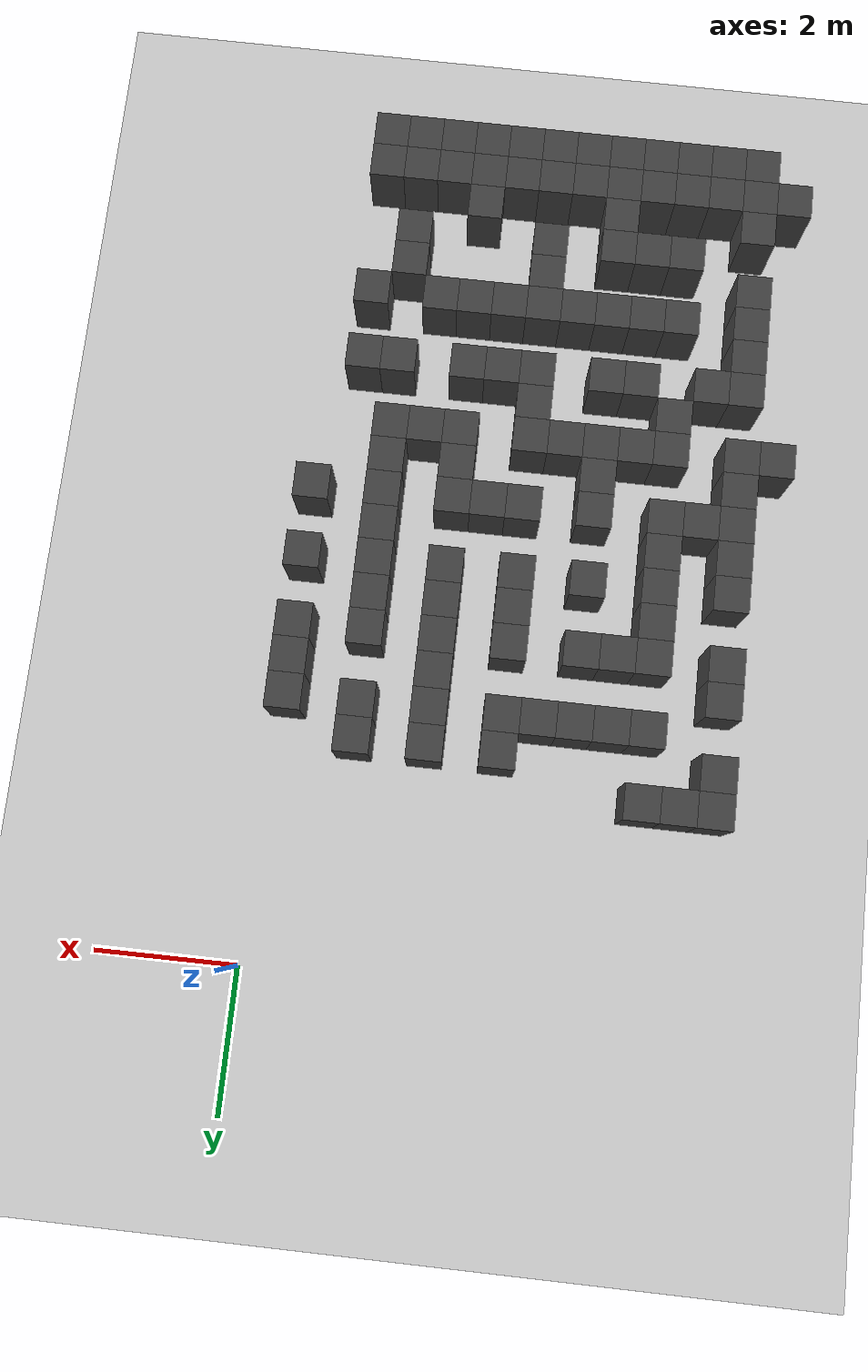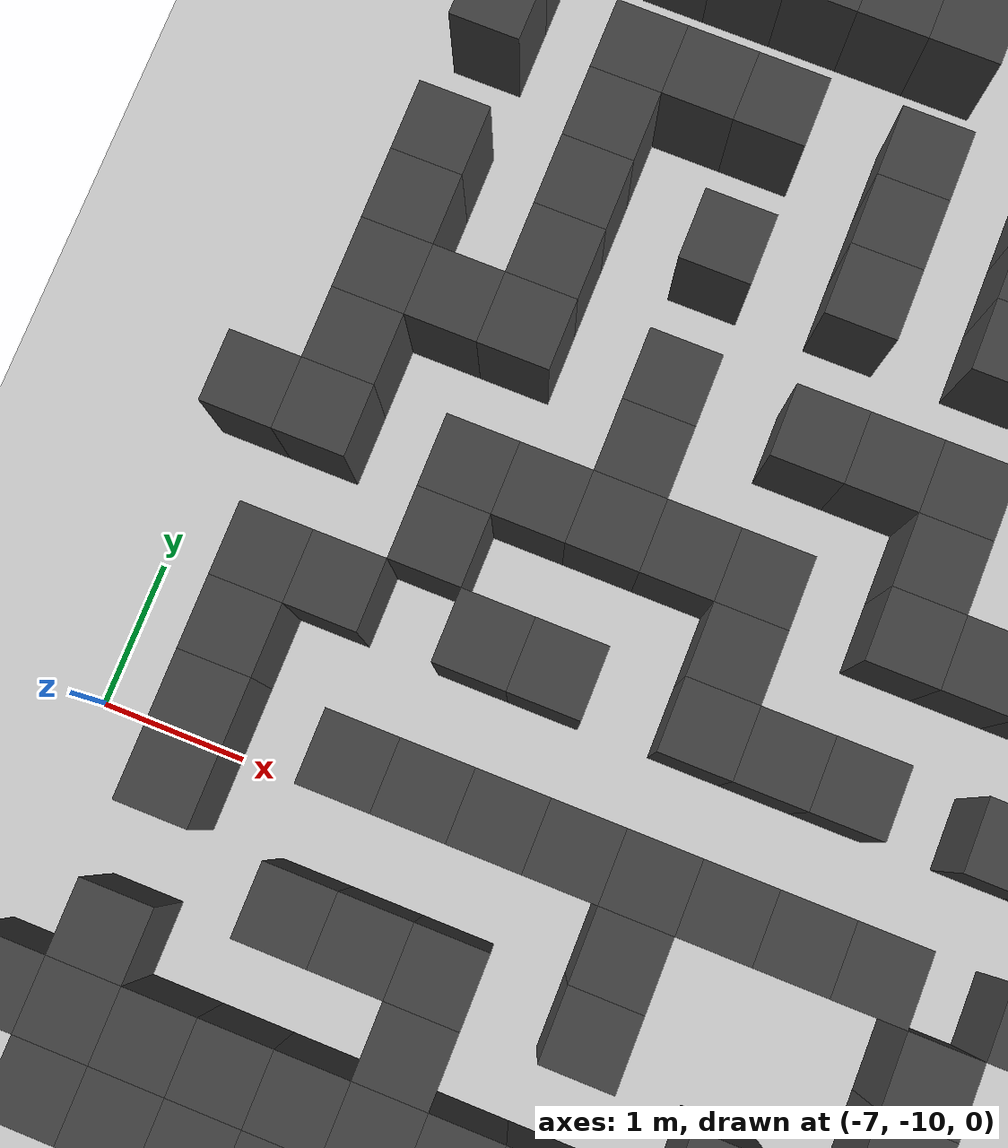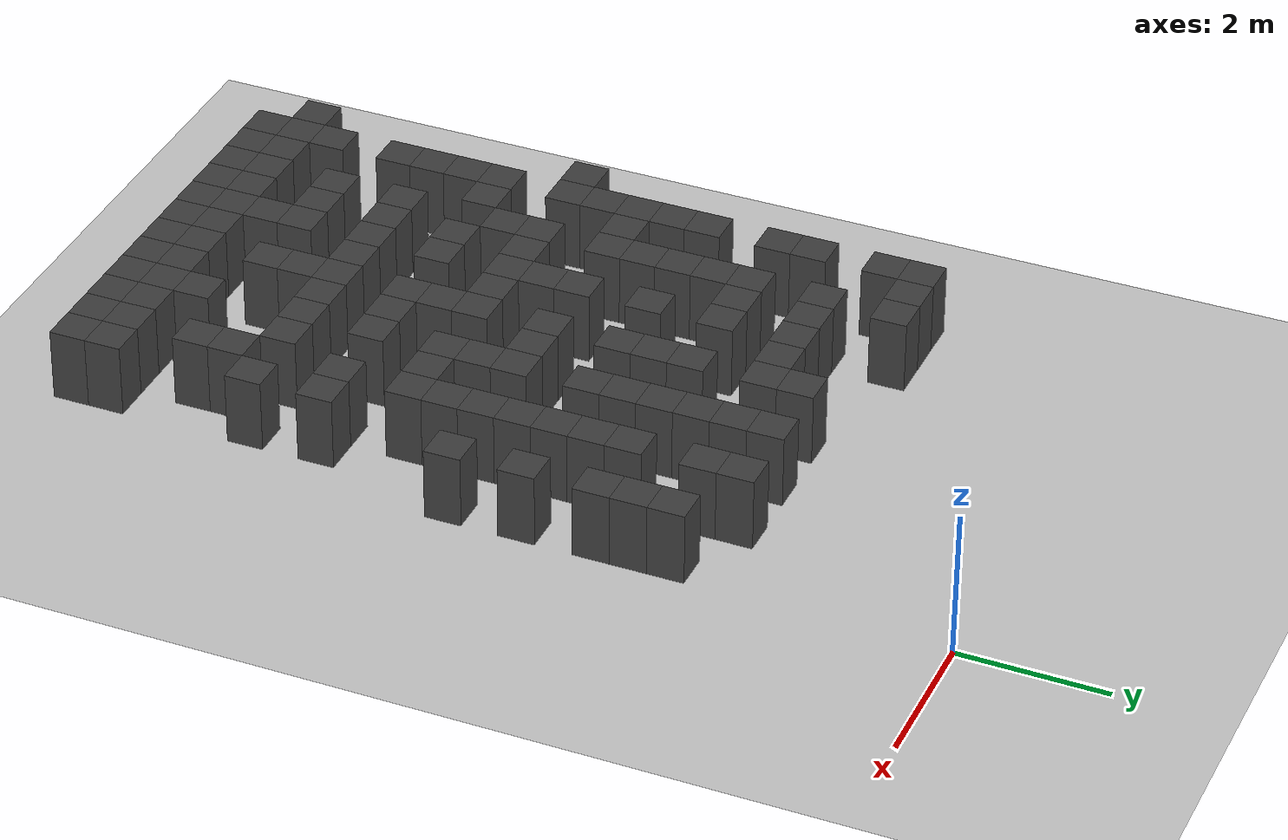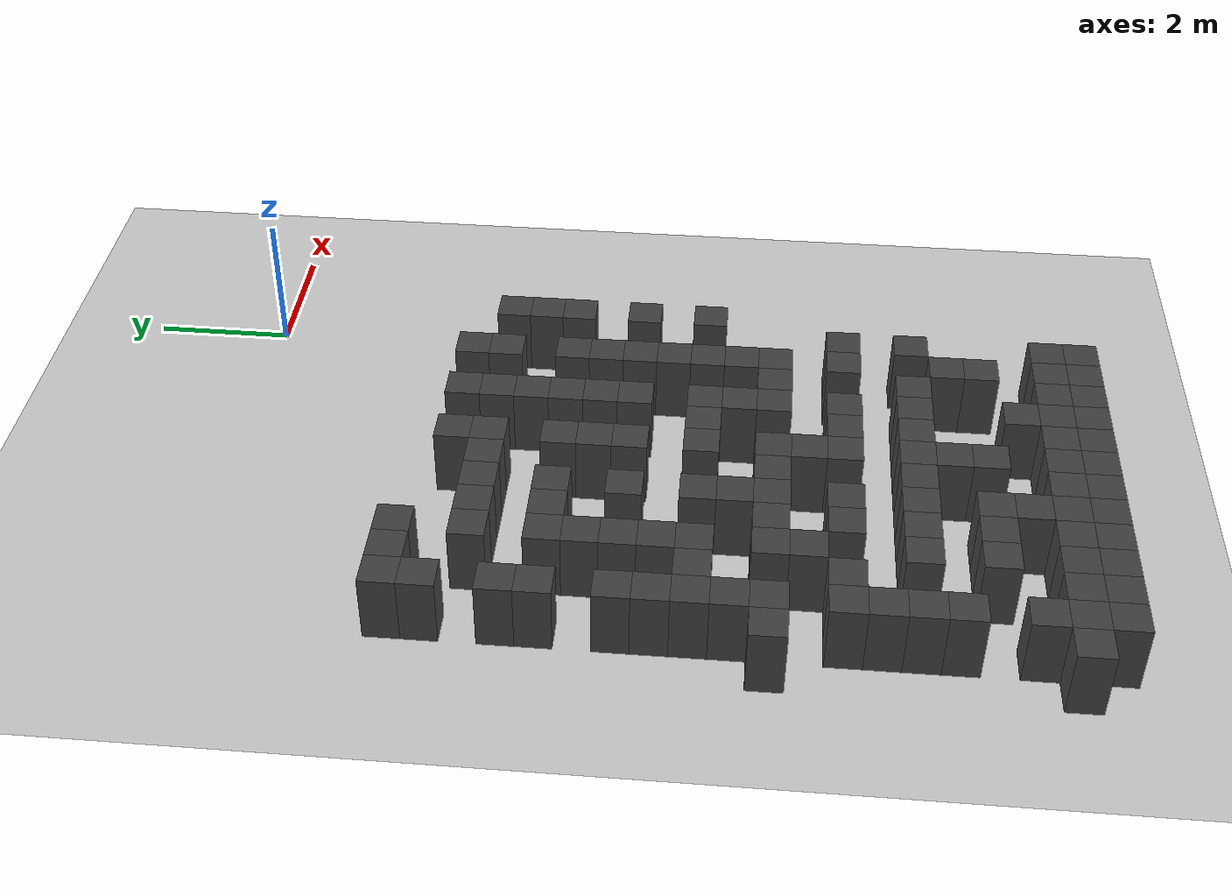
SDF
<sdf version="1.7">
 <world name="map_15497">
  <model name="ground_plane">
   <static>true</static>
   <link name="link">
    <collision name="collision">
     <geometry><plane><normal>0 0 1</normal><size>200 200</size></plane></geometry>
    </collision>
    <visual name="visual">
     <geometry><plane><normal>0 0 1</normal><size>200 200</size></plane></geometry>
     <material><ambient>0.8 0.8 0.8 1</ambient><diffuse>0.8 0.8 0.8 1</diffuse></material>
    </visual>
   </link>
  </model>
  <model name="maze_environment">
   <static>true</static>
   <link name="wall_709">
    <pose>-6.250 -2.750 0.500 0 0 0</pose>
    <collision name="col"><geometry><box><size>0.5 0.5 1.0</size></box></geometry></collision>
    <visual name="vis">
     <geometry><box><size>0.5 0.5 1.0</size></box></geometry>
     <material><ambient>0.15 0.15 0.15 1</ambient><diffuse>0.25 0.25 0.25 1</diffuse></material>
    </visual>
   </link>
   <link name="wall_710">
    <pose>-5.750 -2.750 0.500 0 0 0</pose>
    <collision name="col"><geometry><box><size>0.5 0.5 1.0</size></box></geometry></collision>
    <visual name="vis">
     <geometry><box><size>0.5 0.5 1.0</size></box></geometry>
     <material><ambient>0.15 0.15 0.15 1</ambient><diffuse>0.25 0.25 0.25 1</diffuse></material>
    </visual>
   </link>
   <link name="wall_711">
    <pose>-5.250 -2.750 0.500 0 0 0</pose>
    <collision name="col"><geometry><box><size>0.5 0.5 1.0</size></box></geometry></collision>
    <visual name="vis">
     <geometry><box><size>0.5 0.5 1.0</size></box></geometry>
     <material><ambient>0.15 0.15 0.15 1</ambient><diffuse>0.25 0.25 0.25 1</diffuse></material>
    </visual>
   </link>
   <link name="wall_738">
    <pose>-6.250 -3.250 0.500 0 0 0</pose>
    <collision name="col"><geometry><box><size>0.5 0.5 1.0</size></box></geometry></collision>
    <visual name="vis">
     <geometry><box><size>0.5 0.5 1.0</size></box></geometry>
     <material><ambient>0.15 0.15 0.15 1</ambient><diffuse>0.25 0.25 0.25 1</diffuse></material>
    </visual>
   </link>
   <link name="wall_739">
    <pose>-3.250 -3.250 0.500 0 0 0</pose>
    <collision name="col"><geometry><box><size>0.5 0.5 1.0</size></box></geometry></collision>
    <visual name="vis">
     <geometry><box><size>0.5 0.5 1.0</size></box></geometry>
     <material><ambient>0.15 0.15 0.15 1</ambient><diffuse>0.25 0.25 0.25 1</diffuse></material>
    </visual>
   </link>
   <link name="wall_740">
    <pose>-2.250 -3.250 0.500 0 0 0</pose>
    <collision name="col"><geometry><box><size>0.5 0.5 1.0</size></box></geometry></collision>
    <visual name="vis">
     <geometry><box><size>0.5 0.5 1.0</size></box></geometry>
     <material><ambient>0.15 0.15 0.15 1</ambient><diffuse>0.25 0.25 0.25 1</diffuse></material>
    </visual>
   </link>
   <link name="wall_741">
    <pose>-1.250 -3.250 0.500 0 0 0</pose>
    <collision name="col"><geometry><box><size>0.5 0.5 1.0</size></box></geometry></collision>
    <visual name="vis">
     <geometry><box><size>0.5 0.5 1.0</size></box></geometry>
     <material><ambient>0.15 0.15 0.15 1</ambient><diffuse>0.25 0.25 0.25 1</diffuse></material>
    </visual>
   </link>
   <link name="wall_757">
    <pose>-5.250 -3.750 0.500 0 0 0</pose>
    <collision name="col"><geometry><box><size>0.5 0.5 1.0</size></box></geometry></collision>
    <visual name="vis">
     <geometry><box><size>0.5 0.5 1.0</size></box></geometry>
     <material><ambient>0.15 0.15 0.15 1</ambient><diffuse>0.25 0.25 0.25 1</diffuse></material>
    </visual>
   </link>
   <link name="wall_758">
    <pose>-4.750 -3.750 0.500 0 0 0</pose>
    <collision name="col"><geometry><box><size>0.5 0.5 1.0</size></box></geometry></collision>
    <visual name="vis">
     <geometry><box><size>0.5 0.5 1.0</size></box></geometry>
     <material><ambient>0.15 0.15 0.15 1</ambient><diffuse>0.25 0.25 0.25 1</diffuse></material>
    </visual>
   </link>
   <link name="wall_759">
    <pose>-4.250 -3.750 0.500 0 0 0</pose>
    <collision name="col"><geometry><box><size>0.5 0.5 1.0</size></box></geometry></collision>
    <visual name="vis">
     <geometry><box><size>0.5 0.5 1.0</size></box></geometry>
     <material><ambient>0.15 0.15 0.15 1</ambient><diffuse>0.25 0.25 0.25 1</diffuse></material>
    </visual>
   </link>
   <link name="wall_760">
    <pose>-3.750 -3.750 0.500 0 0 0</pose>
    <collision name="col"><geometry><box><size>0.5 0.5 1.0</size></box></geometry></collision>
    <visual name="vis">
     <geometry><box><size>0.5 0.5 1.0</size></box></geometry>
     <material><ambient>0.15 0.15 0.15 1</ambient><diffuse>0.25 0.25 0.25 1</diffuse></material>
    </visual>
   </link>
   <link name="wall_761">
    <pose>-3.250 -3.750 0.500 0 0 0</pose>
    <collision name="col"><geometry><box><size>0.5 0.5 1.0</size></box></geometry></collision>
    <visual name="vis">
     <geometry><box><size>0.5 0.5 1.0</size></box></geometry>
     <material><ambient>0.15 0.15 0.15 1</ambient><diffuse>0.25 0.25 0.25 1</diffuse></material>
    </visual>
   </link>
   <link name="wall_762">
    <pose>-2.250 -3.750 0.500 0 0 0</pose>
    <collision name="col"><geometry><box><size>0.5 0.5 1.0</size></box></geometry></collision>
    <visual name="vis">
     <geometry><box><size>0.5 0.5 1.0</size></box></geometry>
     <material><ambient>0.15 0.15 0.15 1</ambient><diffuse>0.25 0.25 0.25 1</diffuse></material>
    </visual>
   </link>
   <link name="wall_763">
    <pose>-1.250 -3.750 0.500 0 0 0</pose>
    <collision name="col"><geometry><box><size>0.5 0.5 1.0</size></box></geometry></collision>
    <visual name="vis">
     <geometry><box><size>0.5 0.5 1.0</size></box></geometry>
     <material><ambient>0.15 0.15 0.15 1</ambient><diffuse>0.25 0.25 0.25 1</diffuse></material>
    </visual>
   </link>
   <link name="wall_764">
    <pose>-0.250 -3.750 0.500 0 0 0</pose>
    <collision name="col"><geometry><box><size>0.5 0.5 1.0</size></box></geometry></collision>
    <visual name="vis">
     <geometry><box><size>0.5 0.5 1.0</size></box></geometry>
     <material><ambient>0.15 0.15 0.15 1</ambient><diffuse>0.25 0.25 0.25 1</diffuse></material>
    </visual>
   </link>
   <link name="wall_786">
    <pose>-6.250 -4.250 0.500 0 0 0</pose>
    <collision name="col"><geometry><box><size>0.5 0.5 1.0</size></box></geometry></collision>
    <visual name="vis">
     <geometry><box><size>0.5 0.5 1.0</size></box></geometry>
     <material><ambient>0.15 0.15 0.15 1</ambient><diffuse>0.25 0.25 0.25 1</diffuse></material>
    </visual>
   </link>
   <link name="wall_787">
    <pose>-2.250 -4.250 0.500 0 0 0</pose>
    <collision name="col"><geometry><box><size>0.5 0.5 1.0</size></box></geometry></collision>
    <visual name="vis">
     <geometry><box><size>0.5 0.5 1.0</size></box></geometry>
     <material><ambient>0.15 0.15 0.15 1</ambient><diffuse>0.25 0.25 0.25 1</diffuse></material>
    </visual>
   </link>
   <link name="wall_788">
    <pose>-0.250 -4.250 0.500 0 0 0</pose>
    <collision name="col"><geometry><box><size>0.5 0.5 1.0</size></box></geometry></collision>
    <visual name="vis">
     <geometry><box><size>0.5 0.5 1.0</size></box></geometry>
     <material><ambient>0.15 0.15 0.15 1</ambient><diffuse>0.25 0.25 0.25 1</diffuse></material>
    </visual>
   </link>
   <link name="wall_802">
    <pose>-6.250 -4.750 0.500 0 0 0</pose>
    <collision name="col"><geometry><box><size>0.5 0.5 1.0</size></box></geometry></collision>
    <visual name="vis">
     <geometry><box><size>0.5 0.5 1.0</size></box></geometry>
     <material><ambient>0.15 0.15 0.15 1</ambient><diffuse>0.25 0.25 0.25 1</diffuse></material>
    </visual>
   </link>
   <link name="wall_803">
    <pose>-5.250 -4.750 0.500 0 0 0</pose>
    <collision name="col"><geometry><box><size>0.5 0.5 1.0</size></box></geometry></collision>
    <visual name="vis">
     <geometry><box><size>0.5 0.5 1.0</size></box></geometry>
     <material><ambient>0.15 0.15 0.15 1</ambient><diffuse>0.25 0.25 0.25 1</diffuse></material>
    </visual>
   </link>
   <link name="wall_804">
    <pose>-4.750 -4.750 0.500 0 0 0</pose>
    <collision name="col"><geometry><box><size>0.5 0.5 1.0</size></box></geometry></collision>
    <visual name="vis">
     <geometry><box><size>0.5 0.5 1.0</size></box></geometry>
     <material><ambient>0.15 0.15 0.15 1</ambient><diffuse>0.25 0.25 0.25 1</diffuse></material>
    </visual>
   </link>
   <link name="wall_805">
    <pose>-4.250 -4.750 0.500 0 0 0</pose>
    <collision name="col"><geometry><box><size>0.5 0.5 1.0</size></box></geometry></collision>
    <visual name="vis">
     <geometry><box><size>0.5 0.5 1.0</size></box></geometry>
     <material><ambient>0.15 0.15 0.15 1</ambient><diffuse>0.25 0.25 0.25 1</diffuse></material>
    </visual>
   </link>
   <link name="wall_806">
    <pose>-3.250 -4.750 0.500 0 0 0</pose>
    <collision name="col"><geometry><box><size>0.5 0.5 1.0</size></box></geometry></collision>
    <visual name="vis">
     <geometry><box><size>0.5 0.5 1.0</size></box></geometry>
     <material><ambient>0.15 0.15 0.15 1</ambient><diffuse>0.25 0.25 0.25 1</diffuse></material>
    </visual>
   </link>
   <link name="wall_807">
    <pose>-2.250 -4.750 0.500 0 0 0</pose>
    <collision name="col"><geometry><box><size>0.5 0.5 1.0</size></box></geometry></collision>
    <visual name="vis">
     <geometry><box><size>0.5 0.5 1.0</size></box></geometry>
     <material><ambient>0.15 0.15 0.15 1</ambient><diffuse>0.25 0.25 0.25 1</diffuse></material>
    </visual>
   </link>
   <link name="wall_808">
    <pose>-1.250 -4.750 0.500 0 0 0</pose>
    <collision name="col"><geometry><box><size>0.5 0.5 1.0</size></box></geometry></collision>
    <visual name="vis">
     <geometry><box><size>0.5 0.5 1.0</size></box></geometry>
     <material><ambient>0.15 0.15 0.15 1</ambient><diffuse>0.25 0.25 0.25 1</diffuse></material>
    </visual>
   </link>
   <link name="wall_809">
    <pose>-0.250 -4.750 0.500 0 0 0</pose>
    <collision name="col"><geometry><box><size>0.5 0.5 1.0</size></box></geometry></collision>
    <visual name="vis">
     <geometry><box><size>0.5 0.5 1.0</size></box></geometry>
     <material><ambient>0.15 0.15 0.15 1</ambient><diffuse>0.25 0.25 0.25 1</diffuse></material>
    </visual>
   </link>
   <link name="wall_829">
    <pose>-5.250 -5.250 0.500 0 0 0</pose>
    <collision name="col"><geometry><box><size>0.5 0.5 1.0</size></box></geometry></collision>
    <visual name="vis">
     <geometry><box><size>0.5 0.5 1.0</size></box></geometry>
     <material><ambient>0.15 0.15 0.15 1</ambient><diffuse>0.25 0.25 0.25 1</diffuse></material>
    </visual>
   </link>
   <link name="wall_830">
    <pose>-3.250 -5.250 0.500 0 0 0</pose>
    <collision name="col"><geometry><box><size>0.5 0.5 1.0</size></box></geometry></collision>
    <visual name="vis">
     <geometry><box><size>0.5 0.5 1.0</size></box></geometry>
     <material><ambient>0.15 0.15 0.15 1</ambient><diffuse>0.25 0.25 0.25 1</diffuse></material>
    </visual>
   </link>
   <link name="wall_831">
    <pose>-2.250 -5.250 0.500 0 0 0</pose>
    <collision name="col"><geometry><box><size>0.5 0.5 1.0</size></box></geometry></collision>
    <visual name="vis">
     <geometry><box><size>0.5 0.5 1.0</size></box></geometry>
     <material><ambient>0.15 0.15 0.15 1</ambient><diffuse>0.25 0.25 0.25 1</diffuse></material>
    </visual>
   </link>
   <link name="wall_832">
    <pose>-1.250 -5.250 0.500 0 0 0</pose>
    <collision name="col"><geometry><box><size>0.5 0.5 1.0</size></box></geometry></collision>
    <visual name="vis">
     <geometry><box><size>0.5 0.5 1.0</size></box></geometry>
     <material><ambient>0.15 0.15 0.15 1</ambient><diffuse>0.25 0.25 0.25 1</diffuse></material>
    </visual>
   </link>
   <link name="wall_847">
    <pose>-6.250 -5.750 0.500 0 0 0</pose>
    <collision name="col"><geometry><box><size>0.5 0.5 1.0</size></box></geometry></collision>
    <visual name="vis">
     <geometry><box><size>0.5 0.5 1.0</size></box></geometry>
     <material><ambient>0.15 0.15 0.15 1</ambient><diffuse>0.25 0.25 0.25 1</diffuse></material>
    </visual>
   </link>
   <link name="wall_848">
    <pose>-5.250 -5.750 0.500 0 0 0</pose>
    <collision name="col"><geometry><box><size>0.5 0.5 1.0</size></box></geometry></collision>
    <visual name="vis">
     <geometry><box><size>0.5 0.5 1.0</size></box></geometry>
     <material><ambient>0.15 0.15 0.15 1</ambient><diffuse>0.25 0.25 0.25 1</diffuse></material>
    </visual>
   </link>
   <link name="wall_849">
    <pose>-4.250 -5.750 0.500 0 0 0</pose>
    <collision name="col"><geometry><box><size>0.5 0.5 1.0</size></box></geometry></collision>
    <visual name="vis">
     <geometry><box><size>0.5 0.5 1.0</size></box></geometry>
     <material><ambient>0.15 0.15 0.15 1</ambient><diffuse>0.25 0.25 0.25 1</diffuse></material>
    </visual>
   </link>
   <link name="wall_850">
    <pose>-3.250 -5.750 0.500 0 0 0</pose>
    <collision name="col"><geometry><box><size>0.5 0.5 1.0</size></box></geometry></collision>
    <visual name="vis">
     <geometry><box><size>0.5 0.5 1.0</size></box></geometry>
     <material><ambient>0.15 0.15 0.15 1</ambient><diffuse>0.25 0.25 0.25 1</diffuse></material>
    </visual>
   </link>
   <link name="wall_851">
    <pose>-2.250 -5.750 0.500 0 0 0</pose>
    <collision name="col"><geometry><box><size>0.5 0.5 1.0</size></box></geometry></collision>
    <visual name="vis">
     <geometry><box><size>0.5 0.5 1.0</size></box></geometry>
     <material><ambient>0.15 0.15 0.15 1</ambient><diffuse>0.25 0.25 0.25 1</diffuse></material>
    </visual>
   </link>
   <link name="wall_852">
    <pose>-1.250 -5.750 0.500 0 0 0</pose>
    <collision name="col"><geometry><box><size>0.5 0.5 1.0</size></box></geometry></collision>
    <visual name="vis">
     <geometry><box><size>0.5 0.5 1.0</size></box></geometry>
     <material><ambient>0.15 0.15 0.15 1</ambient><diffuse>0.25 0.25 0.25 1</diffuse></material>
    </visual>
   </link>
   <link name="wall_853">
    <pose>-0.250 -5.750 0.500 0 0 0</pose>
    <collision name="col"><geometry><box><size>0.5 0.5 1.0</size></box></geometry></collision>
    <visual name="vis">
     <geometry><box><size>0.5 0.5 1.0</size></box></geometry>
     <material><ambient>0.15 0.15 0.15 1</ambient><diffuse>0.25 0.25 0.25 1</diffuse></material>
    </visual>
   </link>
   <link name="wall_874">
    <pose>-6.250 -6.250 0.500 0 0 0</pose>
    <collision name="col"><geometry><box><size>0.5 0.5 1.0</size></box></geometry></collision>
    <visual name="vis">
     <geometry><box><size>0.5 0.5 1.0</size></box></geometry>
     <material><ambient>0.15 0.15 0.15 1</ambient><diffuse>0.25 0.25 0.25 1</diffuse></material>
    </visual>
   </link>
   <link name="wall_875">
    <pose>-5.250 -6.250 0.500 0 0 0</pose>
    <collision name="col"><geometry><box><size>0.5 0.5 1.0</size></box></geometry></collision>
    <visual name="vis">
     <geometry><box><size>0.5 0.5 1.0</size></box></geometry>
     <material><ambient>0.15 0.15 0.15 1</ambient><diffuse>0.25 0.25 0.25 1</diffuse></material>
    </visual>
   </link>
   <link name="wall_876">
    <pose>-1.250 -6.250 0.500 0 0 0</pose>
    <collision name="col"><geometry><box><size>0.5 0.5 1.0</size></box></geometry></collision>
    <visual name="vis">
     <geometry><box><size>0.5 0.5 1.0</size></box></geometry>
     <material><ambient>0.15 0.15 0.15 1</ambient><diffuse>0.25 0.25 0.25 1</diffuse></material>
    </visual>
   </link>
   <link name="wall_891">
    <pose>-6.250 -6.750 0.500 0 0 0</pose>
    <collision name="col"><geometry><box><size>0.5 0.5 1.0</size></box></geometry></collision>
    <visual name="vis">
     <geometry><box><size>0.5 0.5 1.0</size></box></geometry>
     <material><ambient>0.15 0.15 0.15 1</ambient><diffuse>0.25 0.25 0.25 1</diffuse></material>
    </visual>
   </link>
   <link name="wall_892">
    <pose>-5.750 -6.750 0.500 0 0 0</pose>
    <collision name="col"><geometry><box><size>0.5 0.5 1.0</size></box></geometry></collision>
    <visual name="vis">
     <geometry><box><size>0.5 0.5 1.0</size></box></geometry>
     <material><ambient>0.15 0.15 0.15 1</ambient><diffuse>0.25 0.25 0.25 1</diffuse></material>
    </visual>
   </link>
   <link name="wall_893">
    <pose>-5.250 -6.750 0.500 0 0 0</pose>
    <collision name="col"><geometry><box><size>0.5 0.5 1.0</size></box></geometry></collision>
    <visual name="vis">
     <geometry><box><size>0.5 0.5 1.0</size></box></geometry>
     <material><ambient>0.15 0.15 0.15 1</ambient><diffuse>0.25 0.25 0.25 1</diffuse></material>
    </visual>
   </link>
   <link name="wall_894">
    <pose>-4.250 -6.750 0.500 0 0 0</pose>
    <collision name="col"><geometry><box><size>0.5 0.5 1.0</size></box></geometry></collision>
    <visual name="vis">
     <geometry><box><size>0.5 0.5 1.0</size></box></geometry>
     <material><ambient>0.15 0.15 0.15 1</ambient><diffuse>0.25 0.25 0.25 1</diffuse></material>
    </visual>
   </link>
   <link name="wall_895">
    <pose>-3.250 -6.750 0.500 0 0 0</pose>
    <collision name="col"><geometry><box><size>0.5 0.5 1.0</size></box></geometry></collision>
    <visual name="vis">
     <geometry><box><size>0.5 0.5 1.0</size></box></geometry>
     <material><ambient>0.15 0.15 0.15 1</ambient><diffuse>0.25 0.25 0.25 1</diffuse></material>
    </visual>
   </link>
   <link name="wall_896">
    <pose>-2.750 -6.750 0.500 0 0 0</pose>
    <collision name="col"><geometry><box><size>0.5 0.5 1.0</size></box></geometry></collision>
    <visual name="vis">
     <geometry><box><size>0.5 0.5 1.0</size></box></geometry>
     <material><ambient>0.15 0.15 0.15 1</ambient><diffuse>0.25 0.25 0.25 1</diffuse></material>
    </visual>
   </link>
   <link name="wall_897">
    <pose>-2.250 -6.750 0.500 0 0 0</pose>
    <collision name="col"><geometry><box><size>0.5 0.5 1.0</size></box></geometry></collision>
    <visual name="vis">
     <geometry><box><size>0.5 0.5 1.0</size></box></geometry>
     <material><ambient>0.15 0.15 0.15 1</ambient><diffuse>0.25 0.25 0.25 1</diffuse></material>
    </visual>
   </link>
   <link name="wall_898">
    <pose>-1.250 -6.750 0.500 0 0 0</pose>
    <collision name="col"><geometry><box><size>0.5 0.5 1.0</size></box></geometry></collision>
    <visual name="vis">
     <geometry><box><size>0.5 0.5 1.0</size></box></geometry>
     <material><ambient>0.15 0.15 0.15 1</ambient><diffuse>0.25 0.25 0.25 1</diffuse></material>
    </visual>
   </link>
   <link name="wall_899">
    <pose>-0.250 -6.750 0.500 0 0 0</pose>
    <collision name="col"><geometry><box><size>0.5 0.5 1.0</size></box></geometry></collision>
    <visual name="vis">
     <geometry><box><size>0.5 0.5 1.0</size></box></geometry>
     <material><ambient>0.15 0.15 0.15 1</ambient><diffuse>0.25 0.25 0.25 1</diffuse></material>
    </visual>
   </link>
   <link name="wall_918">
    <pose>-6.250 -7.250 0.500 0 0 0</pose>
    <collision name="col"><geometry><box><size>0.5 0.5 1.0</size></box></geometry></collision>
    <visual name="vis">
     <geometry><box><size>0.5 0.5 1.0</size></box></geometry>
     <material><ambient>0.15 0.15 0.15 1</ambient><diffuse>0.25 0.25 0.25 1</diffuse></material>
    </visual>
   </link>
   <link name="wall_919">
    <pose>-4.250 -7.250 0.500 0 0 0</pose>
    <collision name="col"><geometry><box><size>0.5 0.5 1.0</size></box></geometry></collision>
    <visual name="vis">
     <geometry><box><size>0.5 0.5 1.0</size></box></geometry>
     <material><ambient>0.15 0.15 0.15 1</ambient><diffuse>0.25 0.25 0.25 1</diffuse></material>
    </visual>
   </link>
   <link name="wall_920">
    <pose>-2.250 -7.250 0.500 0 0 0</pose>
    <collision name="col"><geometry><box><size>0.5 0.5 1.0</size></box></geometry></collision>
    <visual name="vis">
     <geometry><box><size>0.5 0.5 1.0</size></box></geometry>
     <material><ambient>0.15 0.15 0.15 1</ambient><diffuse>0.25 0.25 0.25 1</diffuse></material>
    </visual>
   </link>
   <link name="wall_921">
    <pose>-1.250 -7.250 0.500 0 0 0</pose>
    <collision name="col"><geometry><box><size>0.5 0.5 1.0</size></box></geometry></collision>
    <visual name="vis">
     <geometry><box><size>0.5 0.5 1.0</size></box></geometry>
     <material><ambient>0.15 0.15 0.15 1</ambient><diffuse>0.25 0.25 0.25 1</diffuse></material>
    </visual>
   </link>
   <link name="wall_938">
    <pose>-6.750 -7.750 0.500 0 0 0</pose>
    <collision name="col"><geometry><box><size>0.5 0.5 1.0</size></box></geometry></collision>
    <visual name="vis">
     <geometry><box><size>0.5 0.5 1.0</size></box></geometry>
     <material><ambient>0.15 0.15 0.15 1</ambient><diffuse>0.25 0.25 0.25 1</diffuse></material>
    </visual>
   </link>
   <link name="wall_939">
    <pose>-6.250 -7.750 0.500 0 0 0</pose>
    <collision name="col"><geometry><box><size>0.5 0.5 1.0</size></box></geometry></collision>
    <visual name="vis">
     <geometry><box><size>0.5 0.5 1.0</size></box></geometry>
     <material><ambient>0.15 0.15 0.15 1</ambient><diffuse>0.25 0.25 0.25 1</diffuse></material>
    </visual>
   </link>
   <link name="wall_940">
    <pose>-5.250 -7.750 0.500 0 0 0</pose>
    <collision name="col"><geometry><box><size>0.5 0.5 1.0</size></box></geometry></collision>
    <visual name="vis">
     <geometry><box><size>0.5 0.5 1.0</size></box></geometry>
     <material><ambient>0.15 0.15 0.15 1</ambient><diffuse>0.25 0.25 0.25 1</diffuse></material>
    </visual>
   </link>
   <link name="wall_941">
    <pose>-4.750 -7.750 0.500 0 0 0</pose>
    <collision name="col"><geometry><box><size>0.5 0.5 1.0</size></box></geometry></collision>
    <visual name="vis">
     <geometry><box><size>0.5 0.5 1.0</size></box></geometry>
     <material><ambient>0.15 0.15 0.15 1</ambient><diffuse>0.25 0.25 0.25 1</diffuse></material>
    </visual>
   </link>
   <link name="wall_942">
    <pose>-4.250 -7.750 0.500 0 0 0</pose>
    <collision name="col"><geometry><box><size>0.5 0.5 1.0</size></box></geometry></collision>
    <visual name="vis">
     <geometry><box><size>0.5 0.5 1.0</size></box></geometry>
     <material><ambient>0.15 0.15 0.15 1</ambient><diffuse>0.25 0.25 0.25 1</diffuse></material>
    </visual>
   </link>
   <link name="wall_943">
    <pose>-3.750 -7.750 0.500 0 0 0</pose>
    <collision name="col"><geometry><box><size>0.5 0.5 1.0</size></box></geometry></collision>
    <visual name="vis">
     <geometry><box><size>0.5 0.5 1.0</size></box></geometry>
     <material><ambient>0.15 0.15 0.15 1</ambient><diffuse>0.25 0.25 0.25 1</diffuse></material>
    </visual>
   </link>
   <link name="wall_944">
    <pose>-3.250 -7.750 0.500 0 0 0</pose>
    <collision name="col"><geometry><box><size>0.5 0.5 1.0</size></box></geometry></collision>
    <visual name="vis">
     <geometry><box><size>0.5 0.5 1.0</size></box></geometry>
     <material><ambient>0.15 0.15 0.15 1</ambient><diffuse>0.25 0.25 0.25 1</diffuse></material>
    </visual>
   </link>
   <link name="wall_945">
    <pose>-2.250 -7.750 0.500 0 0 0</pose>
    <collision name="col"><geometry><box><size>0.5 0.5 1.0</size></box></geometry></collision>
    <visual name="vis">
     <geometry><box><size>0.5 0.5 1.0</size></box></geometry>
     <material><ambient>0.15 0.15 0.15 1</ambient><diffuse>0.25 0.25 0.25 1</diffuse></material>
    </visual>
   </link>
   <link name="wall_946">
    <pose>-1.750 -7.750 0.500 0 0 0</pose>
    <collision name="col"><geometry><box><size>0.5 0.5 1.0</size></box></geometry></collision>
    <visual name="vis">
     <geometry><box><size>0.5 0.5 1.0</size></box></geometry>
     <material><ambient>0.15 0.15 0.15 1</ambient><diffuse>0.25 0.25 0.25 1</diffuse></material>
    </visual>
   </link>
   <link name="wall_947">
    <pose>-1.250 -7.750 0.500 0 0 0</pose>
    <collision name="col"><geometry><box><size>0.5 0.5 1.0</size></box></geometry></collision>
    <visual name="vis">
     <geometry><box><size>0.5 0.5 1.0</size></box></geometry>
     <material><ambient>0.15 0.15 0.15 1</ambient><diffuse>0.25 0.25 0.25 1</diffuse></material>
    </visual>
   </link>
   <link name="wall_967">
    <pose>-5.250 -8.250 0.500 0 0 0</pose>
    <collision name="col"><geometry><box><size>0.5 0.5 1.0</size></box></geometry></collision>
    <visual name="vis">
     <geometry><box><size>0.5 0.5 1.0</size></box></geometry>
     <material><ambient>0.15 0.15 0.15 1</ambient><diffuse>0.25 0.25 0.25 1</diffuse></material>
    </visual>
   </link>
   <link name="wall_968">
    <pose>-3.250 -8.250 0.500 0 0 0</pose>
    <collision name="col"><geometry><box><size>0.5 0.5 1.0</size></box></geometry></collision>
    <visual name="vis">
     <geometry><box><size>0.5 0.5 1.0</size></box></geometry>
     <material><ambient>0.15 0.15 0.15 1</ambient><diffuse>0.25 0.25 0.25 1</diffuse></material>
    </visual>
   </link>
   <link name="wall_985">
    <pose>-6.250 -8.750 0.500 0 0 0</pose>
    <collision name="col"><geometry><box><size>0.5 0.5 1.0</size></box></geometry></collision>
    <visual name="vis">
     <geometry><box><size>0.5 0.5 1.0</size></box></geometry>
     <material><ambient>0.15 0.15 0.15 1</ambient><diffuse>0.25 0.25 0.25 1</diffuse></material>
    </visual>
   </link>
   <link name="wall_986">
    <pose>-5.750 -8.750 0.500 0 0 0</pose>
    <collision name="col"><geometry><box><size>0.5 0.5 1.0</size></box></geometry></collision>
    <visual name="vis">
     <geometry><box><size>0.5 0.5 1.0</size></box></geometry>
     <material><ambient>0.15 0.15 0.15 1</ambient><diffuse>0.25 0.25 0.25 1</diffuse></material>
    </visual>
   </link>
   <link name="wall_987">
    <pose>-4.750 -8.750 0.500 0 0 0</pose>
    <collision name="col"><geometry><box><size>0.5 0.5 1.0</size></box></geometry></collision>
    <visual name="vis">
     <geometry><box><size>0.5 0.5 1.0</size></box></geometry>
     <material><ambient>0.15 0.15 0.15 1</ambient><diffuse>0.25 0.25 0.25 1</diffuse></material>
    </visual>
   </link>
   <link name="wall_988">
    <pose>-4.250 -8.750 0.500 0 0 0</pose>
    <collision name="col"><geometry><box><size>0.5 0.5 1.0</size></box></geometry></collision>
    <visual name="vis">
     <geometry><box><size>0.5 0.5 1.0</size></box></geometry>
     <material><ambient>0.15 0.15 0.15 1</ambient><diffuse>0.25 0.25 0.25 1</diffuse></material>
    </visual>
   </link>
   <link name="wall_989">
    <pose>-3.250 -8.750 0.500 0 0 0</pose>
    <collision name="col"><geometry><box><size>0.5 0.5 1.0</size></box></geometry></collision>
    <visual name="vis">
     <geometry><box><size>0.5 0.5 1.0</size></box></geometry>
     <material><ambient>0.15 0.15 0.15 1</ambient><diffuse>0.25 0.25 0.25 1</diffuse></material>
    </visual>
   </link>
   <link name="wall_990">
    <pose>-2.750 -8.750 0.500 0 0 0</pose>
    <collision name="col"><geometry><box><size>0.5 0.5 1.0</size></box></geometry></collision>
    <visual name="vis">
     <geometry><box><size>0.5 0.5 1.0</size></box></geometry>
     <material><ambient>0.15 0.15 0.15 1</ambient><diffuse>0.25 0.25 0.25 1</diffuse></material>
    </visual>
   </link>
   <link name="wall_991">
    <pose>-2.250 -8.750 0.500 0 0 0</pose>
    <collision name="col"><geometry><box><size>0.5 0.5 1.0</size></box></geometry></collision>
    <visual name="vis">
     <geometry><box><size>0.5 0.5 1.0</size></box></geometry>
     <material><ambient>0.15 0.15 0.15 1</ambient><diffuse>0.25 0.25 0.25 1</diffuse></material>
    </visual>
   </link>
   <link name="wall_992">
    <pose>-1.250 -8.750 0.500 0 0 0</pose>
    <collision name="col"><geometry><box><size>0.5 0.5 1.0</size></box></geometry></collision>
    <visual name="vis">
     <geometry><box><size>0.5 0.5 1.0</size></box></geometry>
     <material><ambient>0.15 0.15 0.15 1</ambient><diffuse>0.25 0.25 0.25 1</diffuse></material>
    </visual>
   </link>
   <link name="wall_993">
    <pose>-0.750 -8.750 0.500 0 0 0</pose>
    <collision name="col"><geometry><box><size>0.5 0.5 1.0</size></box></geometry></collision>
    <visual name="vis">
     <geometry><box><size>0.5 0.5 1.0</size></box></geometry>
     <material><ambient>0.15 0.15 0.15 1</ambient><diffuse>0.25 0.25 0.25 1</diffuse></material>
    </visual>
   </link>
   <link name="wall_1014">
    <pose>-6.250 -9.250 0.500 0 0 0</pose>
    <collision name="col"><geometry><box><size>0.5 0.5 1.0</size></box></geometry></collision>
    <visual name="vis">
     <geometry><box><size>0.5 0.5 1.0</size></box></geometry>
     <material><ambient>0.15 0.15 0.15 1</ambient><diffuse>0.25 0.25 0.25 1</diffuse></material>
    </visual>
   </link>
   <link name="wall_1033">
    <pose>-6.250 -9.750 0.500 0 0 0</pose>
    <collision name="col"><geometry><box><size>0.5 0.5 1.0</size></box></geometry></collision>
    <visual name="vis">
     <geometry><box><size>0.5 0.5 1.0</size></box></geometry>
     <material><ambient>0.15 0.15 0.15 1</ambient><diffuse>0.25 0.25 0.25 1</diffuse></material>
    </visual>
   </link>
   <link name="wall_1034">
    <pose>-5.250 -9.750 0.500 0 0 0</pose>
    <collision name="col"><geometry><box><size>0.5 0.5 1.0</size></box></geometry></collision>
    <visual name="vis">
     <geometry><box><size>0.5 0.5 1.0</size></box></geometry>
     <material><ambient>0.15 0.15 0.15 1</ambient><diffuse>0.25 0.25 0.25 1</diffuse></material>
    </visual>
   </link>
   <link name="wall_1035">
    <pose>-4.750 -9.750 0.500 0 0 0</pose>
    <collision name="col"><geometry><box><size>0.5 0.5 1.0</size></box></geometry></collision>
    <visual name="vis">
     <geometry><box><size>0.5 0.5 1.0</size></box></geometry>
     <material><ambient>0.15 0.15 0.15 1</ambient><diffuse>0.25 0.25 0.25 1</diffuse></material>
    </visual>
   </link>
   <link name="wall_1036">
    <pose>-4.250 -9.750 0.500 0 0 0</pose>
    <collision name="col"><geometry><box><size>0.5 0.5 1.0</size></box></geometry></collision>
    <visual name="vis">
     <geometry><box><size>0.5 0.5 1.0</size></box></geometry>
     <material><ambient>0.15 0.15 0.15 1</ambient><diffuse>0.25 0.25 0.25 1</diffuse></material>
    </visual>
   </link>
   <link name="wall_1037">
    <pose>-3.750 -9.750 0.500 0 0 0</pose>
    <collision name="col"><geometry><box><size>0.5 0.5 1.0</size></box></geometry></collision>
    <visual name="vis">
     <geometry><box><size>0.5 0.5 1.0</size></box></geometry>
     <material><ambient>0.15 0.15 0.15 1</ambient><diffuse>0.25 0.25 0.25 1</diffuse></material>
    </visual>
   </link>
   <link name="wall_1038">
    <pose>-3.250 -9.750 0.500 0 0 0</pose>
    <collision name="col"><geometry><box><size>0.5 0.5 1.0</size></box></geometry></collision>
    <visual name="vis">
     <geometry><box><size>0.5 0.5 1.0</size></box></geometry>
     <material><ambient>0.15 0.15 0.15 1</ambient><diffuse>0.25 0.25 0.25 1</diffuse></material>
    </visual>
   </link>
   <link name="wall_1039">
    <pose>-2.750 -9.750 0.500 0 0 0</pose>
    <collision name="col"><geometry><box><size>0.5 0.5 1.0</size></box></geometry></collision>
    <visual name="vis">
     <geometry><box><size>0.5 0.5 1.0</size></box></geometry>
     <material><ambient>0.15 0.15 0.15 1</ambient><diffuse>0.25 0.25 0.25 1</diffuse></material>
    </visual>
   </link>
   <link name="wall_1040">
    <pose>-2.250 -9.750 0.500 0 0 0</pose>
    <collision name="col"><geometry><box><size>0.5 0.5 1.0</size></box></geometry></collision>
    <visual name="vis">
     <geometry><box><size>0.5 0.5 1.0</size></box></geometry>
     <material><ambient>0.15 0.15 0.15 1</ambient><diffuse>0.25 0.25 0.25 1</diffuse></material>
    </visual>
   </link>
   <link name="wall_1041">
    <pose>-1.750 -9.750 0.500 0 0 0</pose>
    <collision name="col"><geometry><box><size>0.5 0.5 1.0</size></box></geometry></collision>
    <visual name="vis">
     <geometry><box><size>0.5 0.5 1.0</size></box></geometry>
     <material><ambient>0.15 0.15 0.15 1</ambient><diffuse>0.25 0.25 0.25 1</diffuse></material>
    </visual>
   </link>
   <link name="wall_1042">
    <pose>-0.750 -9.750 0.500 0 0 0</pose>
    <collision name="col"><geometry><box><size>0.5 0.5 1.0</size></box></geometry></collision>
    <visual name="vis">
     <geometry><box><size>0.5 0.5 1.0</size></box></geometry>
     <material><ambient>0.15 0.15 0.15 1</ambient><diffuse>0.25 0.25 0.25 1</diffuse></material>
    </visual>
   </link>
   <link name="wall_1066">
    <pose>-6.250 -10.250 0.500 0 0 0</pose>
    <collision name="col"><geometry><box><size>0.5 0.5 1.0</size></box></geometry></collision>
    <visual name="vis">
     <geometry><box><size>0.5 0.5 1.0</size></box></geometry>
     <material><ambient>0.15 0.15 0.15 1</ambient><diffuse>0.25 0.25 0.25 1</diffuse></material>
    </visual>
   </link>
   <link name="wall_1067">
    <pose>-3.250 -10.250 0.500 0 0 0</pose>
    <collision name="col"><geometry><box><size>0.5 0.5 1.0</size></box></geometry></collision>
    <visual name="vis">
     <geometry><box><size>0.5 0.5 1.0</size></box></geometry>
     <material><ambient>0.15 0.15 0.15 1</ambient><diffuse>0.25 0.25 0.25 1</diffuse></material>
    </visual>
   </link>
   <link name="wall_1068">
    <pose>-1.250 -10.250 0.500 0 0 0</pose>
    <collision name="col"><geometry><box><size>0.5 0.5 1.0</size></box></geometry></collision>
    <visual name="vis">
     <geometry><box><size>0.5 0.5 1.0</size></box></geometry>
     <material><ambient>0.15 0.15 0.15 1</ambient><diffuse>0.25 0.25 0.25 1</diffuse></material>
    </visual>
   </link>
   <link name="wall_1082">
    <pose>-5.250 -10.750 0.500 0 0 0</pose>
    <collision name="col"><geometry><box><size>0.5 0.5 1.0</size></box></geometry></collision>
    <visual name="vis">
     <geometry><box><size>0.5 0.5 1.0</size></box></geometry>
     <material><ambient>0.15 0.15 0.15 1</ambient><diffuse>0.25 0.25 0.25 1</diffuse></material>
    </visual>
   </link>
   <link name="wall_1083">
    <pose>-4.750 -10.750 0.500 0 0 0</pose>
    <collision name="col"><geometry><box><size>0.5 0.5 1.0</size></box></geometry></collision>
    <visual name="vis">
     <geometry><box><size>0.5 0.5 1.0</size></box></geometry>
     <material><ambient>0.15 0.15 0.15 1</ambient><diffuse>0.25 0.25 0.25 1</diffuse></material>
    </visual>
   </link>
   <link name="wall_1084">
    <pose>-4.250 -10.750 0.500 0 0 0</pose>
    <collision name="col"><geometry><box><size>0.5 0.5 1.0</size></box></geometry></collision>
    <visual name="vis">
     <geometry><box><size>0.5 0.5 1.0</size></box></geometry>
     <material><ambient>0.15 0.15 0.15 1</ambient><diffuse>0.25 0.25 0.25 1</diffuse></material>
    </visual>
   </link>
   <link name="wall_1085">
    <pose>-3.250 -10.750 0.500 0 0 0</pose>
    <collision name="col"><geometry><box><size>0.5 0.5 1.0</size></box></geometry></collision>
    <visual name="vis">
     <geometry><box><size>0.5 0.5 1.0</size></box></geometry>
     <material><ambient>0.15 0.15 0.15 1</ambient><diffuse>0.25 0.25 0.25 1</diffuse></material>
    </visual>
   </link>
   <link name="wall_1086">
    <pose>-1.250 -10.750 0.500 0 0 0</pose>
    <collision name="col"><geometry><box><size>0.5 0.5 1.0</size></box></geometry></collision>
    <visual name="vis">
     <geometry><box><size>0.5 0.5 1.0</size></box></geometry>
     <material><ambient>0.15 0.15 0.15 1</ambient><diffuse>0.25 0.25 0.25 1</diffuse></material>
    </visual>
   </link>
   <link name="wall_1106">
    <pose>-6.250 -11.250 0.500 0 0 0</pose>
    <collision name="col"><geometry><box><size>0.5 0.5 1.0</size></box></geometry></collision>
    <visual name="vis">
     <geometry><box><size>0.5 0.5 1.0</size></box></geometry>
     <material><ambient>0.15 0.15 0.15 1</ambient><diffuse>0.25 0.25 0.25 1</diffuse></material>
    </visual>
   </link>
   <link name="wall_1107">
    <pose>-4.250 -11.250 0.500 0 0 0</pose>
    <collision name="col"><geometry><box><size>0.5 0.5 1.0</size></box></geometry></collision>
    <visual name="vis">
     <geometry><box><size>0.5 0.5 1.0</size></box></geometry>
     <material><ambient>0.15 0.15 0.15 1</ambient><diffuse>0.25 0.25 0.25 1</diffuse></material>
    </visual>
   </link>
   <link name="wall_1108">
    <pose>-2.250 -11.250 0.500 0 0 0</pose>
    <collision name="col"><geometry><box><size>0.5 0.5 1.0</size></box></geometry></collision>
    <visual name="vis">
     <geometry><box><size>0.5 0.5 1.0</size></box></geometry>
     <material><ambient>0.15 0.15 0.15 1</ambient><diffuse>0.25 0.25 0.25 1</diffuse></material>
    </visual>
   </link>
   <link name="wall_1123">
    <pose>-6.750 -11.750 0.500 0 0 0</pose>
    <collision name="col"><geometry><box><size>0.5 0.5 1.0</size></box></geometry></collision>
    <visual name="vis">
     <geometry><box><size>0.5 0.5 1.0</size></box></geometry>
     <material><ambient>0.15 0.15 0.15 1</ambient><diffuse>0.25 0.25 0.25 1</diffuse></material>
    </visual>
   </link>
   <link name="wall_1124">
    <pose>-6.250 -11.750 0.500 0 0 0</pose>
    <collision name="col"><geometry><box><size>0.5 0.5 1.0</size></box></geometry></collision>
    <visual name="vis">
     <geometry><box><size>0.5 0.5 1.0</size></box></geometry>
     <material><ambient>0.15 0.15 0.15 1</ambient><diffuse>0.25 0.25 0.25 1</diffuse></material>
    </visual>
   </link>
   <link name="wall_1125">
    <pose>-5.750 -11.750 0.500 0 0 0</pose>
    <collision name="col"><geometry><box><size>0.5 0.5 1.0</size></box></geometry></collision>
    <visual name="vis">
     <geometry><box><size>0.5 0.5 1.0</size></box></geometry>
     <material><ambient>0.15 0.15 0.15 1</ambient><diffuse>0.25 0.25 0.25 1</diffuse></material>
    </visual>
   </link>
   <link name="wall_1126">
    <pose>-5.250 -11.750 0.500 0 0 0</pose>
    <collision name="col"><geometry><box><size>0.5 0.5 1.0</size></box></geometry></collision>
    <visual name="vis">
     <geometry><box><size>0.5 0.5 1.0</size></box></geometry>
     <material><ambient>0.15 0.15 0.15 1</ambient><diffuse>0.25 0.25 0.25 1</diffuse></material>
    </visual>
   </link>
   <link name="wall_1127">
    <pose>-4.750 -11.750 0.500 0 0 0</pose>
    <collision name="col"><geometry><box><size>0.5 0.5 1.0</size></box></geometry></collision>
    <visual name="vis">
     <geometry><box><size>0.5 0.5 1.0</size></box></geometry>
     <material><ambient>0.15 0.15 0.15 1</ambient><diffuse>0.25 0.25 0.25 1</diffuse></material>
    </visual>
   </link>
   <link name="wall_1128">
    <pose>-4.250 -11.750 0.500 0 0 0</pose>
    <collision name="col"><geometry><box><size>0.5 0.5 1.0</size></box></geometry></collision>
    <visual name="vis">
     <geometry><box><size>0.5 0.5 1.0</size></box></geometry>
     <material><ambient>0.15 0.15 0.15 1</ambient><diffuse>0.25 0.25 0.25 1</diffuse></material>
    </visual>
   </link>
   <link name="wall_1129">
    <pose>-3.750 -11.750 0.500 0 0 0</pose>
    <collision name="col"><geometry><box><size>0.5 0.5 1.0</size></box></geometry></collision>
    <visual name="vis">
     <geometry><box><size>0.5 0.5 1.0</size></box></geometry>
     <material><ambient>0.15 0.15 0.15 1</ambient><diffuse>0.25 0.25 0.25 1</diffuse></material>
    </visual>
   </link>
   <link name="wall_1130">
    <pose>-3.250 -11.750 0.500 0 0 0</pose>
    <collision name="col"><geometry><box><size>0.5 0.5 1.0</size></box></geometry></collision>
    <visual name="vis">
     <geometry><box><size>0.5 0.5 1.0</size></box></geometry>
     <material><ambient>0.15 0.15 0.15 1</ambient><diffuse>0.25 0.25 0.25 1</diffuse></material>
    </visual>
   </link>
   <link name="wall_1131">
    <pose>-2.750 -11.750 0.500 0 0 0</pose>
    <collision name="col"><geometry><box><size>0.5 0.5 1.0</size></box></geometry></collision>
    <visual name="vis">
     <geometry><box><size>0.5 0.5 1.0</size></box></geometry>
     <material><ambient>0.15 0.15 0.15 1</ambient><diffuse>0.25 0.25 0.25 1</diffuse></material>
    </visual>
   </link>
   <link name="wall_1132">
    <pose>-2.250 -11.750 0.500 0 0 0</pose>
    <collision name="col"><geometry><box><size>0.5 0.5 1.0</size></box></geometry></collision>
    <visual name="vis">
     <geometry><box><size>0.5 0.5 1.0</size></box></geometry>
     <material><ambient>0.15 0.15 0.15 1</ambient><diffuse>0.25 0.25 0.25 1</diffuse></material>
    </visual>
   </link>
   <link name="wall_1133">
    <pose>-1.750 -11.750 0.500 0 0 0</pose>
    <collision name="col"><geometry><box><size>0.5 0.5 1.0</size></box></geometry></collision>
    <visual name="vis">
     <geometry><box><size>0.5 0.5 1.0</size></box></geometry>
     <material><ambient>0.15 0.15 0.15 1</ambient><diffuse>0.25 0.25 0.25 1</diffuse></material>
    </visual>
   </link>
   <link name="wall_1134">
    <pose>-1.250 -11.750 0.500 0 0 0</pose>
    <collision name="col"><geometry><box><size>0.5 0.5 1.0</size></box></geometry></collision>
    <visual name="vis">
     <geometry><box><size>0.5 0.5 1.0</size></box></geometry>
     <material><ambient>0.15 0.15 0.15 1</ambient><diffuse>0.25 0.25 0.25 1</diffuse></material>
    </visual>
   </link>
   <link name="wall_1135">
    <pose>-0.750 -11.750 0.500 0 0 0</pose>
    <collision name="col"><geometry><box><size>0.5 0.5 1.0</size></box></geometry></collision>
    <visual name="vis">
     <geometry><box><size>0.5 0.5 1.0</size></box></geometry>
     <material><ambient>0.15 0.15 0.15 1</ambient><diffuse>0.25 0.25 0.25 1</diffuse></material>
    </visual>
   </link>
   <link name="wall_1172">
    <pose>-6.250 -12.250 0.500 0 0 0</pose>
    <collision name="col"><geometry><box><size>0.5 0.5 1.0</size></box></geometry></collision>
    <visual name="vis">
     <geometry><box><size>0.5 0.5 1.0</size></box></geometry>
     <material><ambient>0.15 0.15 0.15 1</ambient><diffuse>0.25 0.25 0.25 1</diffuse></material>
    </visual>
   </link>
   <link name="wall_1173">
    <pose>-5.750 -12.250 0.500 0 0 0</pose>
    <collision name="col"><geometry><box><size>0.5 0.5 1.0</size></box></geometry></collision>
    <visual name="vis">
     <geometry><box><size>0.5 0.5 1.0</size></box></geometry>
     <material><ambient>0.15 0.15 0.15 1</ambient><diffuse>0.25 0.25 0.25 1</diffuse></material>
    </visual>
   </link>
   <link name="wall_1174">
    <pose>-5.250 -12.250 0.500 0 0 0</pose>
    <collision name="col"><geometry><box><size>0.5 0.5 1.0</size></box></geometry></collision>
    <visual name="vis">
     <geometry><box><size>0.5 0.5 1.0</size></box></geometry>
     <material><ambient>0.15 0.15 0.15 1</ambient><diffuse>0.25 0.25 0.25 1</diffuse></material>
    </visual>
   </link>
   <link name="wall_1175">
    <pose>-4.750 -12.250 0.500 0 0 0</pose>
    <collision name="col"><geometry><box><size>0.5 0.5 1.0</size></box></geometry></collision>
    <visual name="vis">
     <geometry><box><size>0.5 0.5 1.0</size></box></geometry>
     <material><ambient>0.15 0.15 0.15 1</ambient><diffuse>0.25 0.25 0.25 1</diffuse></material>
    </visual>
   </link>
   <link name="wall_1176">
    <pose>-4.250 -12.250 0.500 0 0 0</pose>
    <collision name="col"><geometry><box><size>0.5 0.5 1.0</size></box></geometry></collision>
    <visual name="vis">
     <geometry><box><size>0.5 0.5 1.0</size></box></geometry>
     <material><ambient>0.15 0.15 0.15 1</ambient><diffuse>0.25 0.25 0.25 1</diffuse></material>
    </visual>
   </link>
   <link name="wall_1177">
    <pose>-3.750 -12.250 0.500 0 0 0</pose>
    <collision name="col"><geometry><box><size>0.5 0.5 1.0</size></box></geometry></collision>
    <visual name="vis">
     <geometry><box><size>0.5 0.5 1.0</size></box></geometry>
     <material><ambient>0.15 0.15 0.15 1</ambient><diffuse>0.25 0.25 0.25 1</diffuse></material>
    </visual>
   </link>
   <link name="wall_1178">
    <pose>-3.250 -12.250 0.500 0 0 0</pose>
    <collision name="col"><geometry><box><size>0.5 0.5 1.0</size></box></geometry></collision>
    <visual name="vis">
     <geometry><box><size>0.5 0.5 1.0</size></box></geometry>
     <material><ambient>0.15 0.15 0.15 1</ambient><diffuse>0.25 0.25 0.25 1</diffuse></material>
    </visual>
   </link>
   <link name="wall_1179">
    <pose>-2.750 -12.250 0.500 0 0 0</pose>
    <collision name="col"><geometry><box><size>0.5 0.5 1.0</size></box></geometry></collision>
    <visual name="vis">
     <geometry><box><size>0.5 0.5 1.0</size></box></geometry>
     <material><ambient>0.15 0.15 0.15 1</ambient><diffuse>0.25 0.25 0.25 1</diffuse></material>
    </visual>
   </link>
   <link name="wall_1180">
    <pose>-2.250 -12.250 0.500 0 0 0</pose>
    <collision name="col"><geometry><box><size>0.5 0.5 1.0</size></box></geometry></collision>
    <visual name="vis">
     <geometry><box><size>0.5 0.5 1.0</size></box></geometry>
     <material><ambient>0.15 0.15 0.15 1</ambient><diffuse>0.25 0.25 0.25 1</diffuse></material>
    </visual>
   </link>
   <link name="wall_1181">
    <pose>-1.750 -12.250 0.500 0 0 0</pose>
    <collision name="col"><geometry><box><size>0.5 0.5 1.0</size></box></geometry></collision>
    <visual name="vis">
     <geometry><box><size>0.5 0.5 1.0</size></box></geometry>
     <material><ambient>0.15 0.15 0.15 1</ambient><diffuse>0.25 0.25 0.25 1</diffuse></material>
    </visual>
   </link>
   <link name="wall_1182">
    <pose>-1.250 -12.250 0.500 0 0 0</pose>
    <collision name="col"><geometry><box><size>0.5 0.5 1.0</size></box></geometry></collision>
    <visual name="vis">
     <geometry><box><size>0.5 0.5 1.0</size></box></geometry>
     <material><ambient>0.15 0.15 0.15 1</ambient><diffuse>0.25 0.25 0.25 1</diffuse></material>
    </visual>
   </link>
   <link name="wall_1183">
    <pose>-0.750 -12.250 0.500 0 0 0</pose>
    <collision name="col"><geometry><box><size>0.5 0.5 1.0</size></box></geometry></collision>
    <visual name="vis">
     <geometry><box><size>0.5 0.5 1.0</size></box></geometry>
     <material><ambient>0.15 0.15 0.15 1</ambient><diffuse>0.25 0.25 0.25 1</diffuse></material>
    </visual>
   </link>
  </model>
 </world>
</sdf>
